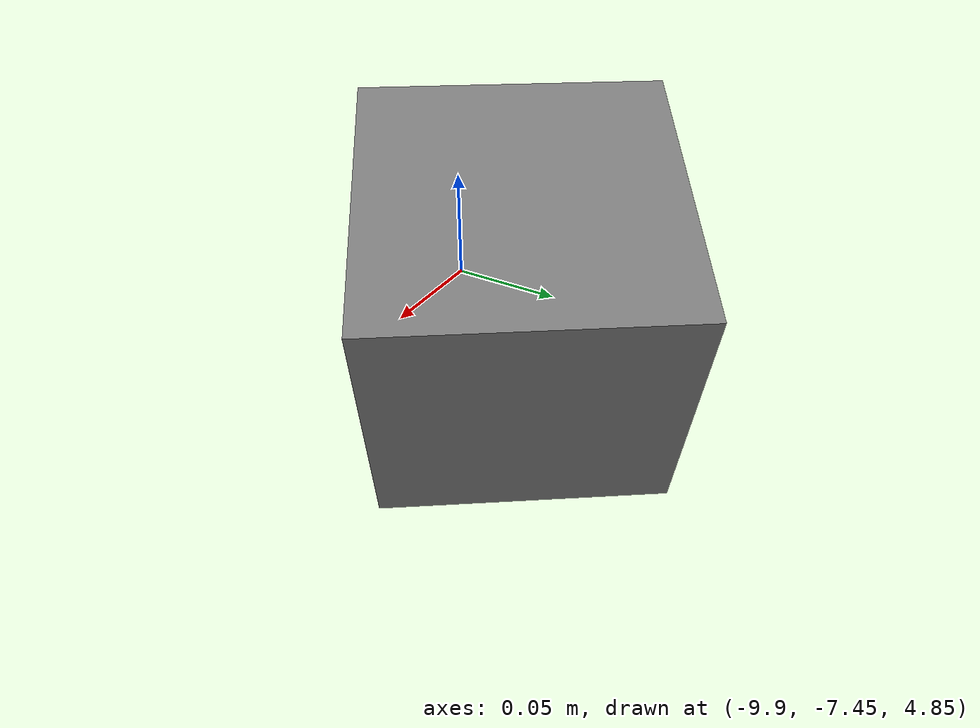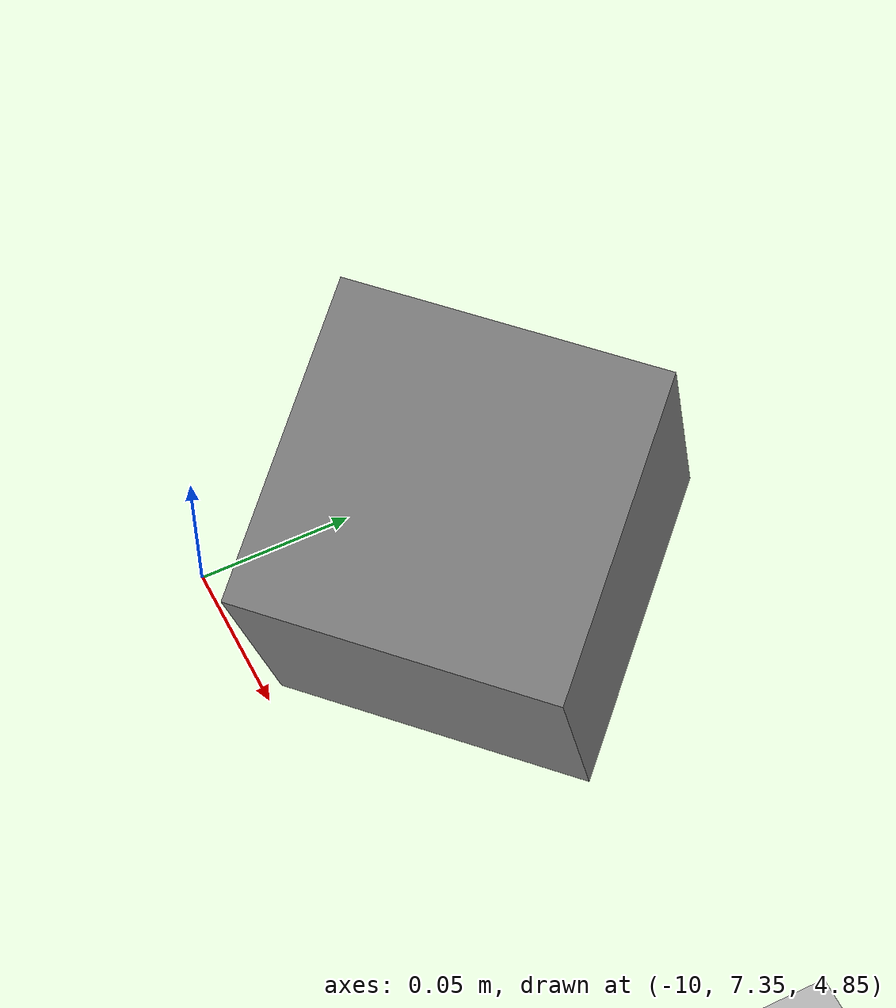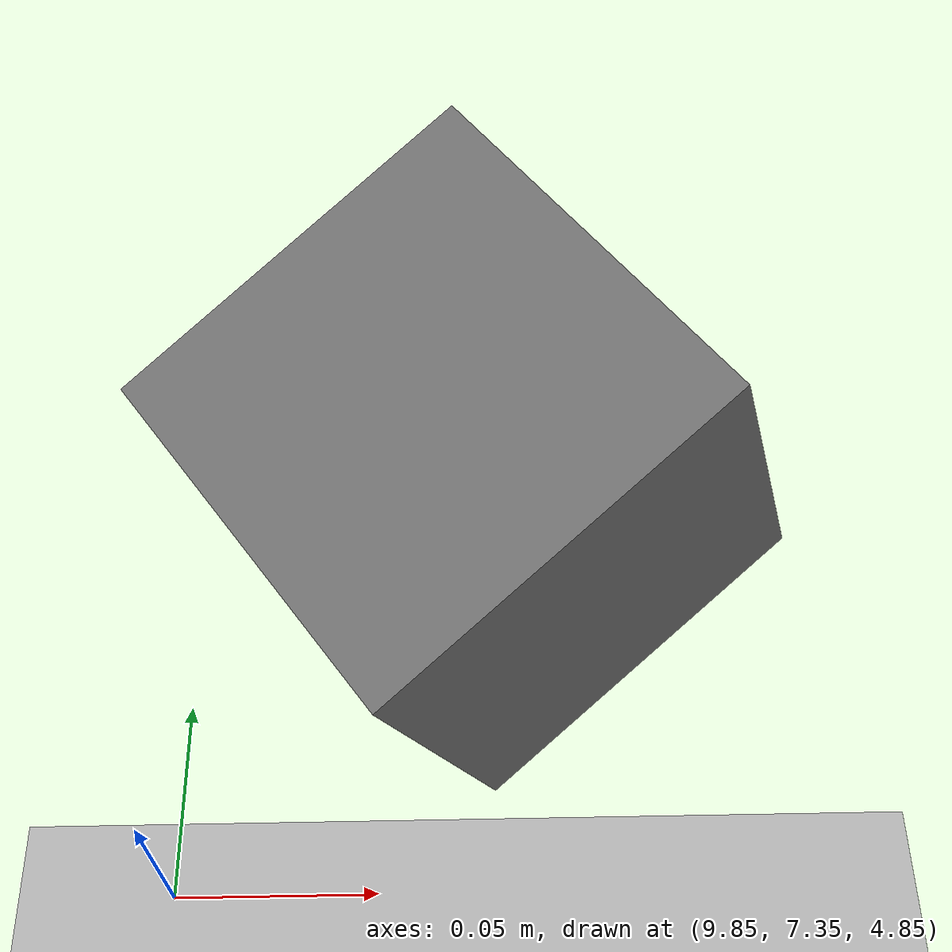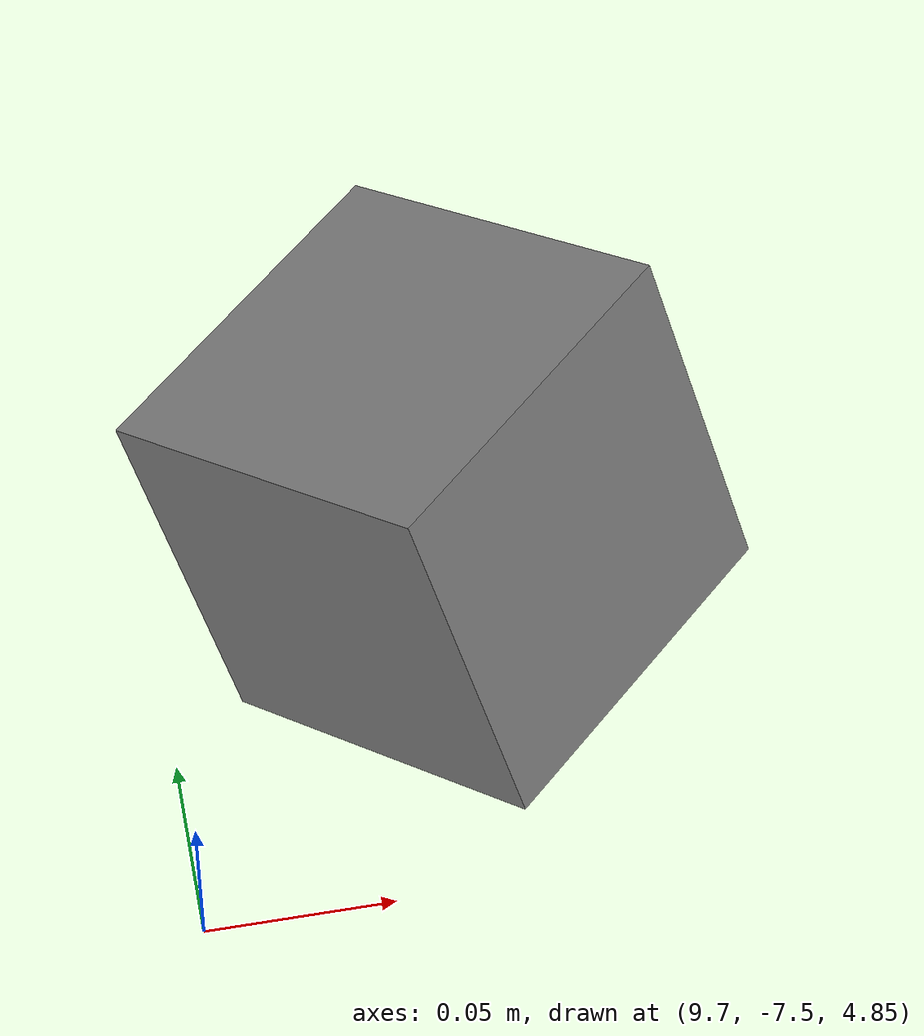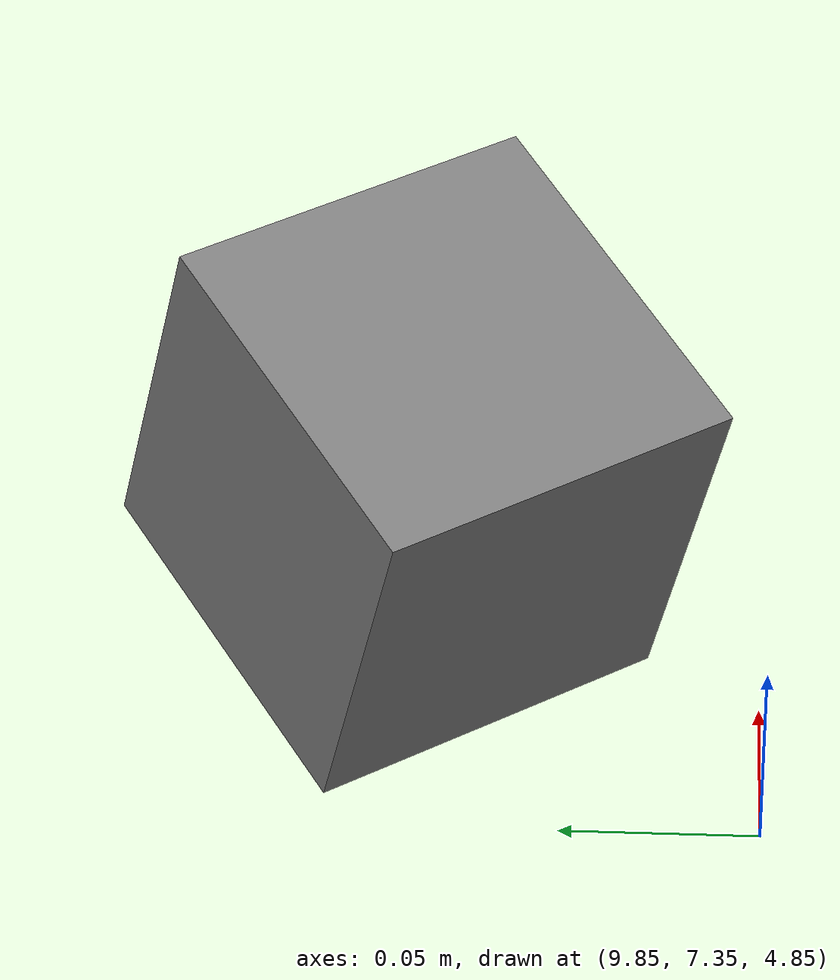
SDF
<sdf version="1.9">
 <world name="empty">
  <physics name="1ms" type="ignored">
   <max_step_size>0.001</max_step_size>
   <real_time_factor>1</real_time_factor>
   <real_time_update_rate>1000</real_time_update_rate>
  </physics>
  <plugin name="gz::sim::systems::Physics" filename="ignition-gazebo-physics-system"/>
  <plugin name="gz::sim::systems::UserCommands" filename="ignition-gazebo-user-commands-system"/>
  <plugin name="gz::sim::systems::SceneBroadcaster" filename="ignition-gazebo-scene-broadcaster-system"/>
  <plugin name="gz::sim::systems::Contact" filename="ignition-gazebo-contact-system"/>
  <plugin name="gz::sim::systems::Sensors" filename="ignition-gazebo6-sensors-system"/>
  <plugin name="gz::sim::systems::UserCommands" filename="ignition-gazebo-user-commands-system"/>
  <gravity>0 0 -9.8</gravity>
  <magnetic_field>6e-06 2.3e-05 -4.2e-05</magnetic_field>
  <atmosphere type="adiabatic"/>
  <scene><ambient>0.4 0.4 0.4 1</ambient><background>0.7 0.7 0.7 1</background><shadows>true</shadows></scene>
  <model name="ground_plane">
   <static>true</static>
   <link name="link">
    <collision name="collision">
     <geometry><plane><normal>0 0 1</normal><size>100 100</size></plane></geometry>
     <surface><friction><ode><mu>100</mu><mu2>50</mu2></ode></friction></surface>
    </collision>
    <visual name="visual">
     <cast_shadows>false</cast_shadows>
     <geometry><plane><normal>0 0 1</normal><size>100 100</size></plane></geometry>
     <material>
      <ambient>0.3 0.3 0.3 1</ambient>
      <diffuse>0.7 0.7 0.7 1</diffuse>
      <specular>0.01 0.01 0.01 1</specular>
     </material>
    </visual>
    <inertial>
     <mass>1</mass>
     <inertia><ixx>1</ixx><ixy>0</ixy><ixz>0</ixz><iyy>1</iyy><iyz>0</iyz><izz>1</izz></inertia>
    </inertial>
   </link>
   <pose>1.7587 0 0 0 -0 0</pose>
  </model>
  <model name="rgbd_camera">
   <link name="link">
    <visual name="camera_visual">
     <geometry><box><size>0.1 0.1 0.1</size></box></geometry>
     <material><ambient>0.5 0.5 0.5 1</ambient><diffuse>0.5 0.5 0.5 1</diffuse></material>
    </visual>
    <sensor name="camera_sensor" type="camera">
     <topic>__default__</topic>
     <update_rate>30</update_rate>
     <enable_metrics>false</enable_metrics>
     <camera>
      <horizontal_fov>1.0469999999999999</horizontal_fov>
      <image>
       <width>1920</width>
       <height>1080</height>
       <format>RGB_INT8</format>
       <anti_aliasing>4</anti_aliasing>
      </image>
      <camera_info_topic>__default__</camera_info_topic>
      <triggered>false</triggered>
      <clip><near>0.10000000000000001</near><far>100</far></clip>
      <save enabled="false"><path>__default__</path></save>
      <visibility_mask>4294967295</visibility_mask>
      <noise><type>none</type><mean>0</mean><stddev>0</stddev></noise>
      <distortion><k1>0</k1><k2>0</k2><k3>0</k3><p1>0</p1><p2>0</p2><center>0.5 0.5</center></distortion>
      <lens>
       <type>stereographic</type>
       <scale_to_hfov>true</scale_to_hfov>
       <cutoff_angle>1.5708</cutoff_angle>
       <env_texture_size>256</env_texture_size>
      </lens>
     </camera>
    </sensor>
    <inertial>
     <mass>1</mass>
     <inertia><ixx>1</ixx><ixy>0</ixy><ixz>0</ixz><iyy>1</iyy><iyz>0</iyz><izz>1</izz></inertia>
    </inertial>
   </link>
   <pose>9.7764 -7.4141 4.907 0 0.3745 2.3213</pose>
   <static>true</static>
  </model>
  <model name="rgbd_camera_1">
   <link name="link_1">
    <visual name="camera_visual_1">
     <geometry><box><size>0.1 0.1 0.1</size></box></geometry>
     <material><ambient>0.5 0.5 0.5 1</ambient><diffuse>0.5 0.5 0.5 1</diffuse></material>
    </visual>
    <sensor name="camera_sensor_1" type="camera">
     <topic>__default__</topic>
     <update_rate>30</update_rate>
     <enable_metrics>false</enable_metrics>
     <camera>
      <horizontal_fov>1.0469999999999999</horizontal_fov>
      <image>
       <width>1920</width>
       <height>1080</height>
       <format>RGB_INT8</format>
       <anti_aliasing>4</anti_aliasing>
      </image>
      <camera_info_topic>__default__</camera_info_topic>
      <triggered>false</triggered>
      <clip><near>0.10000000000000001</near><far>100</far></clip>
      <save enabled="false"><path>__default__</path></save>
      <visibility_mask>4294967295</visibility_mask>
      <noise><type>none</type><mean>0</mean><stddev>0</stddev></noise>
      <distortion><k1>0</k1><k2>0</k2><k3>0</k3><p1>0</p1><p2>0</p2><center>0.5 0.5</center></distortion>
      <lens>
       <type>stereographic</type>
       <scale_to_hfov>true</scale_to_hfov>
       <cutoff_angle>1.5708</cutoff_angle>
       <env_texture_size>256</env_texture_size>
      </lens>
     </camera>
    </sensor>
    <inertial>
     <mass>1</mass>
     <inertia><ixx>1</ixx><ixy>0</ixy><ixz>0</ixz><iyy>1</iyy><iyz>0</iyz><izz>1</izz></inertia>
    </inertial>
   </link>
   <pose>-9.80918 -7.36591 4.907 -0 0.366 0.5975</pose>
   <static>true</static>
  </model>
  <model name="rgbd_camera_2">
   <link name="link_2">
    <visual name="camera_visual_2">
     <geometry><box><size>0.1 0.1 0.1</size></box></geometry>
     <material><ambient>0.5 0.5 0.5 1</ambient><diffuse>0.5 0.5 0.5 1</diffuse></material>
    </visual>
    <sensor name="camera_sensor_2" type="camera">
     <topic>__default__</topic>
     <update_rate>30</update_rate>
     <enable_metrics>false</enable_metrics>
     <camera>
      <horizontal_fov>1.0469999999999999</horizontal_fov>
      <image>
       <width>1920</width>
       <height>1080</height>
       <format>RGB_INT8</format>
       <anti_aliasing>4</anti_aliasing>
      </image>
      <camera_info_topic>__default__</camera_info_topic>
      <triggered>false</triggered>
      <clip><near>0.10000000000000001</near><far>100</far></clip>
      <save enabled="false"><path>__default__</path></save>
      <visibility_mask>4294967295</visibility_mask>
      <noise><type>none</type><mean>0</mean><stddev>0</stddev></noise>
      <distortion><k1>0</k1><k2>0</k2><k3>0</k3><p1>0</p1><p2>0</p2><center>0.5 0.5</center></distortion>
      <lens>
       <type>stereographic</type>
       <scale_to_hfov>true</scale_to_hfov>
       <cutoff_angle>1.5708</cutoff_angle>
       <env_texture_size>256</env_texture_size>
      </lens>
     </camera>
    </sensor>
    <inertial>
     <mass>1</mass>
     <inertia><ixx>1</ixx><ixy>0</ixy><ixz>0</ixz><iyy>1</iyy><iyz>0</iyz><izz>1</izz></inertia>
    </inertial>
   </link>
   <pose>9.9253 7.43722 4.907 -0 0.328 -2.5103</pose>
   <static>true</static>
  </model>
  <model name="rgbd_camera_3">
   <link name="link_3">
    <visual name="camera_visual_3">
     <geometry><box><size>0.1 0.1 0.1</size></box></geometry>
     <material><ambient>0.5 0.5 0.5 1</ambient><diffuse>0.5 0.5 0.5 1</diffuse></material>
    </visual>
    <sensor name="camera_sensor_3" type="camera">
     <topic>__default__</topic>
     <update_rate>30</update_rate>
     <enable_metrics>false</enable_metrics>
     <camera>
      <horizontal_fov>1.0469999999999999</horizontal_fov>
      <image>
       <width>1920</width>
       <height>1080</height>
       <format>RGB_INT8</format>
       <anti_aliasing>4</anti_aliasing>
      </image>
      <camera_info_topic>__default__</camera_info_topic>
      <triggered>false</triggered>
      <clip><near>0.10000000000000001</near><far>100</far></clip>
      <save enabled="false"><path>__default__</path></save>
      <visibility_mask>4294967295</visibility_mask>
      <noise><type>none</type><mean>0</mean><stddev>0</stddev></noise>
      <distortion><k1>0</k1><k2>0</k2><k3>0</k3><p1>0</p1><p2>0</p2><center>0.5 0.5</center></distortion>
      <lens>
       <type>stereographic</type>
       <scale_to_hfov>true</scale_to_hfov>
       <cutoff_angle>1.5708</cutoff_angle>
       <env_texture_size>256</env_texture_size>
      </lens>
     </camera>
    </sensor>
    <inertial>
     <mass>1</mass>
     <inertia><ixx>1</ixx><ixy>0</ixy><ixz>0</ixz><iyy>1</iyy><iyz>0</iyz><izz>1</izz></inertia>
    </inertial>
   </link>
   <pose>-9.9422 7.4141 4.907 0 0.3261 -0.8121</pose>
   <static>true</static>
  </model>
  <light name="sun" type="directional">
   <pose>0 0 10 0 -0 0</pose>
   <intensity>1</intensity>
   <direction>-0.5 0.1 -0.9</direction>
   <diffuse>0.8 0.8 0.8 1</diffuse>
   <specular>0.2 0.2 0.2 1</specular>
   <attenuation>
    <range>1000</range>
    <linear>0.01</linear>
    <constant>0.90000000000000002</constant>
    <quadratic>0.001</quadratic>
   </attenuation>
   <spot><inner_angle>0</inner_angle><outer_angle>0</outer_angle><falloff>0</falloff></spot>
  </light>
 </world>
</sdf>
